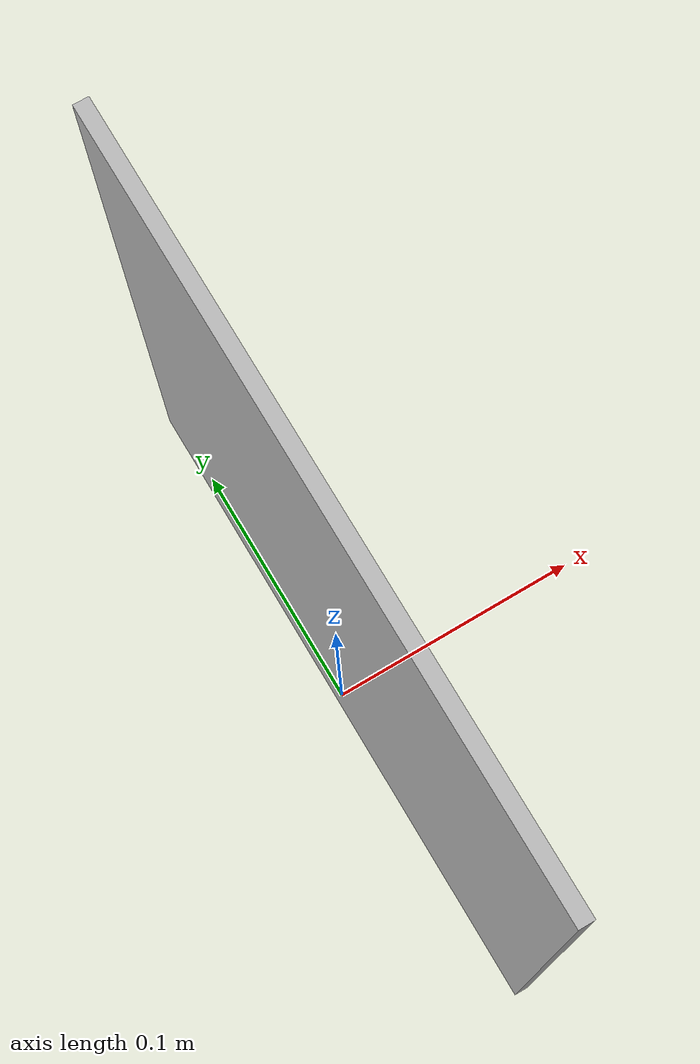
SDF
<?xml version="1.0" ?><sdf version="1.4">
  <model name="marker5">
    <static>true</static>
    <link name="link">
      <visual name="visual">
        <geometry>
          <mesh>
            <uri>model://marker5/meshes/marker5.dae</uri>
          <scale>0.52 0.52 0.52</scale></mesh>
        </geometry>
      </visual>
    </link>
  </model>
</sdf>
